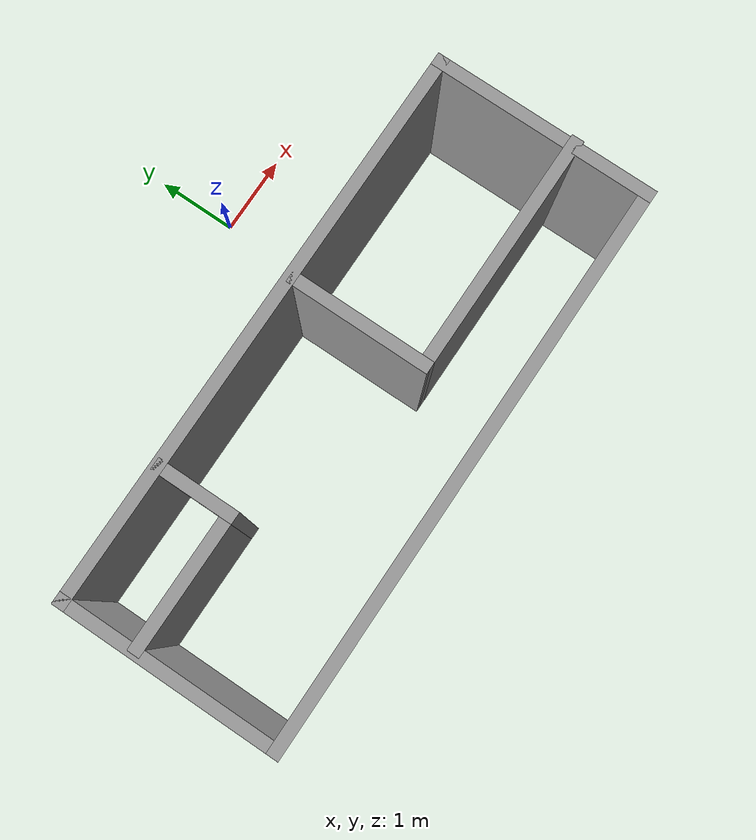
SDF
<?xml version='1.0'?>
<sdf version='1.7'>
  <model name='room'>
    <pose>-1.14 -2.0575 0 0 -0 0</pose>
    <link name='Wall_0'>
      <collision name='Wall_0_Collision'>
        <geometry>
          <box>
            <size>2.75 0.15 2.5</size>
          </box>
        </geometry>
        <pose>0 0 1.25 0 -0 0</pose>
      </collision>
      <visual name='Wall_0_Visual'>
        <pose>0 0 1.25 0 -0 0</pose>
        <geometry>
          <box>
            <size>2.75 0.15 2.5</size>
          </box>
        </geometry>
        <material>
          <script>
            <uri>file://media/materials/scripts/gazebo.material</uri>
            <name>Gazebo/Grey</name>
          </script>
          <ambient>1 1 1 1</ambient>
        </material>
        <meta>
          <layer>0</layer>
        </meta>
      </visual>
      <pose>-3.44 -0.6825 0 0 -0 -1.5708</pose>
    </link>
    <link name='Wall_1'>
      <collision name='Wall_1_Collision'>
        <geometry>
          <box>
            <size>7 0.15 2.5</size>
          </box>
        </geometry>
        <pose>0 0 1.25 0 -0 0</pose>
      </collision>
      <visual name='Wall_1_Visual'>
        <pose>0 0 1.25 0 -0 0</pose>
        <geometry>
          <box>
            <size>7 0.15 2.5</size>
          </box>
        </geometry>
        <material>
          <script>
            <uri>file://media/materials/scripts/gazebo.material</uri>
            <name>Gazebo/Grey</name>
          </script>
          <ambient>1 1 1 1</ambient>
        </material>
        <meta>
          <layer>0</layer>
        </meta>
      </visual>
      <pose>-0.015 -1.9825 0 0 -0 0</pose>
    </link>
    <link name='Wall_2'>
      <collision name='Wall_2_Collision'>
        <geometry>
          <box>
            <size>2.75 0.15 2.5</size>
          </box>
        </geometry>
        <pose>0 0 1.25 0 -0 0</pose>
      </collision>
      <visual name='Wall_2_Visual'>
        <pose>0 0 1.25 0 -0 0</pose>
        <geometry>
          <box>
            <size>2.75 0.15 2.5</size>
          </box>
        </geometry>
        <material>
          <script>
            <uri>file://media/materials/scripts/gazebo.material</uri>
            <name>Gazebo/Grey</name>
          </script>
          <ambient>1 1 1 1</ambient>
        </material>
        <meta>
          <layer>0</layer>
        </meta>
      </visual>
      <pose>3.41 -0.6825 0 0 -0 1.5708</pose>
    </link>
    <link name='Wall_3'>
      <collision name='Wall_3_Collision'>
        <geometry>
          <box>
            <size>7 0.15 2.5</size>
          </box>
        </geometry>
        <pose>0 0 1.25 0 -0 0</pose>
      </collision>
      <visual name='Wall_3_Visual'>
        <pose>0 0 1.25 0 -0 0</pose>
        <geometry>
          <box>
            <size>7 0.15 2.5</size>
          </box>
        </geometry>
        <material>
          <script>
            <uri>file://media/materials/scripts/gazebo.material</uri>
            <name>Gazebo/Grey</name>
          </script>
          <ambient>1 1 1 1</ambient>
        </material>
        <meta>
          <layer>0</layer>
        </meta>
      </visual>
      <pose>-0.015 0.6175 0 0 -0 3.14159</pose>
    </link>
    <link name='Wall_5'>
      <collision name='Wall_5_Collision'>
        <geometry>
          <box>
            <size>1.75 0.15 2.5</size>
          </box>
        </geometry>
        <pose>0 0 1.25 0 -0 0</pose>
      </collision>
      <visual name='Wall_5_Visual'>
        <pose>0 0 1.25 0 -0 0</pose>
        <geometry>
          <box>
            <size>1.75 0.15 2.5</size>
          </box>
        </geometry>
        <material>
          <script>
            <uri>file://media/materials/scripts/gazebo.material</uri>
            <name>Gazebo/Grey</name>
          </script>
          <ambient>1 1 1 1</ambient>
        </material>
        <meta>
          <layer>0</layer>
        </meta>
      </visual>
      <pose>-2.59 -0.2725 0 0 -0 0</pose>
    </link>
    <link name='Wall_6'>
      <collision name='Wall_6_Collision'>
        <geometry>
          <box>
            <size>1 0.15 2.5</size>
          </box>
        </geometry>
        <pose>0 0 1.25 0 -0 0</pose>
      </collision>
      <visual name='Wall_6_Visual'>
        <pose>0 0 1.25 0 -0 0</pose>
        <geometry>
          <box>
            <size>1 0.15 2.5</size>
          </box>
        </geometry>
        <material>
          <script>
            <uri>file://media/materials/scripts/gazebo.material</uri>
            <name>Gazebo/Grey</name>
          </script>
          <ambient>1 1 1 1</ambient>
        </material>
        <meta>
          <layer>0</layer>
        </meta>
      </visual>
      <pose>-1.79 0.1525 0 0 -0 1.5708</pose>
    </link>
    <link name='Wall_8'>
      <collision name='Wall_8_Collision'>
        <geometry>
          <box>
            <size>1.75 0.15 2.5</size>
          </box>
        </geometry>
        <pose>0 0 1.25 0 -0 0</pose>
      </collision>
      <visual name='Wall_8_Visual'>
        <pose>0 0 1.25 0 -0 0</pose>
        <geometry>
          <box>
            <size>1.75 0.15 2.5</size>
          </box>
        </geometry>
        <material>
          <script>
            <uri>file://media/materials/scripts/gazebo.material</uri>
            <name>Gazebo/Grey</name>
          </script>
          <ambient>1 1 1 1</ambient>
        </material>
        <meta>
          <layer>0</layer>
        </meta>
      </visual>
      <pose>0.59 -0.2525 0 0 -0 -1.5708</pose>
    </link>
    <link name='Wall_9'>
      <collision name='Wall_9_Collision'>
        <geometry>
          <box>
            <size>3 0.15 2.5</size>
          </box>
        </geometry>
        <pose>0 0 1.25 0 -0 0</pose>
      </collision>
      <visual name='Wall_9_Visual'>
        <pose>0 0 1.25 0 -0 0</pose>
        <geometry>
          <box>
            <size>3 0.15 2.5</size>
          </box>
        </geometry>
        <material>
          <script>
            <uri>file://media/materials/scripts/gazebo.material</uri>
            <name>Gazebo/Grey</name>
          </script>
          <ambient>1 1 1 1</ambient>
        </material>
        <meta>
          <layer>0</layer>
        </meta>
      </visual>
      <pose>2.015 -1.0525 0 0 -0 0</pose>
    </link>
    <static>1</static>
  </model>
</sdf>
